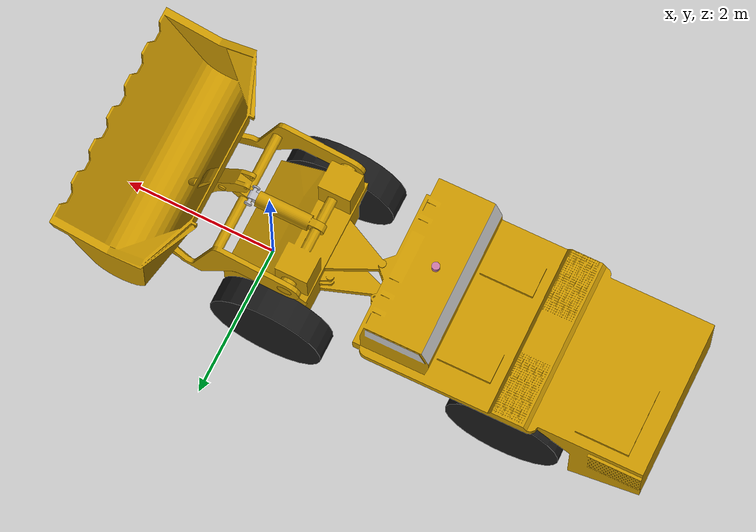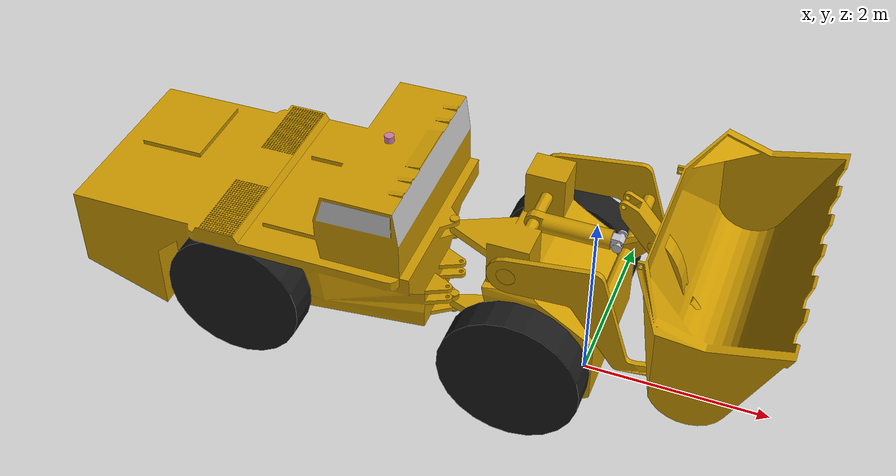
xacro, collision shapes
<?xml version="1.0" ?>
<robot xmlns:xacro="http://www.ros.org/wiki/xacro"
  name="vehicle_urdf_model">
  <xacro:property name="hydraulic_tube_depth" value="0.5249" />
  <xacro:property name="hydraulic_cylinder_start_offset" value="0.05843" />

  <!-- Lift-arm rear mount reference:
       CAD mesh shaft center = (-0.28, 1.41, 0.0)
       URDF joint origin     = (-0.28, 0.0, 1.41). -->
  <link
    name="frontbase_link">
    <inertial>
      <origin
        xyz="-0.15633 2.387E-07 1.0079"
        rpy="0 0 0" />
      <mass
        value="5327.1" />
      <inertia
        ixx="1543.9"
        ixy="0.0014228"
        ixz="222.2"
        iyy="2510.6"
        iyz="-0.0019455"
        izz="2276.8" />
    </inertial>
    <visual>
      <origin
        xyz="0 0 0"
        rpy="0 0 0" />
      <geometry>
        <mesh
          filename="package://articulated_description/meshes/frontbase_Link_with_cylinder.dae" />
      </geometry>
      <material
        name="yellow_body">
        <color
          rgba="0.8 0.6 0.0 1" />
      </material>
    </visual>
    <collision>
      <origin
        xyz="0 0 0"
        rpy="0 0 0" />
      <geometry>
        <mesh
          filename="package://articulated_description/meshes/frontbase_Link_with_cylinder.dae" />
      </geometry>
    </collision>
  </link>
  <link
    name="leftfrontwheel_Link">
    <inertial>
      <origin
        xyz="-1.1102E-16 -0.17395 -1.1102E-16"
        rpy="0 0 0" />
      <mass
        value="492.2" />
      <inertia
        ixx="84.12"
        ixy="1.0524E-16"
        ixz="-1.4211E-14"
        iyy="158.30"
        iyz="-4.5117E-17"
        izz="84.12" />
    </inertial>
    <visual>
      <origin
        xyz="0 0 0"
        rpy="0 0 0" />
      <geometry>
        <mesh
          filename="package://articulated_description/meshes/leftfrontwheel_Link.dae" />
      </geometry>
      <material
        name="black_wheel">
        <color
          rgba="0.1 0.1 0.1 1" />
      </material>
    </visual>
    <collision>
      <origin xyz="0 -0.175 0" rpy="1.5708 0 0" />
      <geometry>
        <cylinder radius="0.75" length="0.35" />
      </geometry>
    </collision>
  </link>
  <joint
    name="leftfrontwheel_to_frontbase"
    type="continuous">
    <origin
      xyz="-0.5 0.821 0.75"
      rpy="3.1416 0.91009 -7.8779E-17" />
    <parent
      link="frontbase_link" />
    <child
      link="leftfrontwheel_Link" />
    <axis
      xyz="0 -1 0" />
    <limit
      effort="10000"
      velocity="10.0" />
    <dynamics damping="1.0" friction="0.2" />
  </joint>
  <link
    name="rightfrontwheel_Link">
    <inertial>
      <origin
        xyz="1.1102E-16 -0.17395 -1.1102E-16"
        rpy="0 0 0" />
      <mass
        value="492.2" />
      <inertia
        ixx="84.12"
        ixy="8.8544E-17"
        ixz="-3.0304E-49"
        iyy="158.30"
        iyz="-1.3628E-17"
        izz="84.12" />
    </inertial>
    <visual>
      <origin
        xyz="0 0 0"
        rpy="0 0 0" />
      <geometry>
        <mesh
          filename="package://articulated_description/meshes/rightfrontwheel_Link.dae" />
      </geometry>
      <material
        name="black_wheel">
        <color
          rgba="0.1 0.1 0.1 1" />
      </material>
    </visual>
    <collision>
      <origin xyz="0 -0.175 0" rpy="1.5708 0 0" />
      <geometry>
        <cylinder radius="0.75" length="0.35" />
      </geometry>
    </collision>
  </link>
  <joint
    name="rightfrontwheel_to_frontbase"
    type="continuous">
    <origin
      xyz="-0.5 -0.821 0.75"
      rpy="-3.1416 -0.72502 3.1416" />
    <parent
      link="frontbase_link" />
    <child
      link="rightfrontwheel_Link" />
    <axis
      xyz="0 1 0" />
    <limit
      effort="10000"
      velocity="10.0" />
    <dynamics damping="1.0" friction="0.2" />
  </joint>
  <link
    name="bucket_arm_Link">
    <inertial>
      <origin
        xyz="0.7 0 0"
        rpy="0 0 0" />
      <mass
        value="10.0" />
      <inertia
        ixx="1.5"
        ixy="0.0"
        ixz="0.0"
        iyy="7.5"
        iyz="0.0"
        izz="7.5" />
    </inertial>
    <visual>
      <origin
        xyz="0 0 0"
        rpy="0 0 0" />
      <geometry>
        <mesh
          filename="package://articulated_description/meshes/bucket_arm_nocylinder_wide.dae" />
      </geometry>
      <material
        name="yellow_body">
        <color
          rgba="0.8 0.6 0.0 1" />
      </material>
    </visual>
    <collision>
      <origin
        xyz="0 0 0"
        rpy="0 0 0" />
      <geometry>
        <mesh
          filename="package://articulated_description/meshes/bucket_arm_nocylinder_wide.dae" />
      </geometry>
    </collision>
  </link>
  <joint
    name="bucket_arm_axis"
    type="revolute">
    <origin
      xyz="-0.64 0 1.87"
      rpy="0 0 0" />
    <parent
      link="frontbase_link" />
    <child
      link="bucket_arm_Link" />
    <axis
      xyz="0 -1 0" />
    <limit
      lower="-0.25"
      upper="1.0"
      effort="200000"
      velocity="0.5" />
    <dynamics damping="40.0" friction="3.0" />
  </joint>
  <joint
    name="arm_to_rocker"
    type="fixed">
    <origin
      xyz="0.95719 0 -0.082758"
      rpy="0 -0.7 0" />
    <parent
      link="bucket_arm_Link" />
    <child
      link="rocker_holder_link" />
  </joint>
  <link
    name="rocker_holder_link">
    <inertial>
      <origin
        xyz="-0.25 0 -0.01"
        rpy="0 0 0" />
      <mass
        value="10.0" />
      <inertia
        ixx="0.0333333333"
        ixy="0.0"
        ixz="0.0"
        iyy="0.1333333333"
        iyz="0.0"
        izz="0.1333333333" />
    </inertial>
    <visual>
      <origin
        xyz="0 0 0"
        rpy="0 0 0" />
      <geometry>
        <mesh
          filename="package://articulated_description/meshes/rocker_holder.dae" />
      </geometry>
      <material
        name="yellow_body">
        <color
          rgba="0.8 0.6 0.0 1" />
      </material>
    </visual>
    <collision>
      <origin
        xyz="0 0 0"
        rpy="0 0 0" />
      <geometry>
        <mesh
          filename="package://articulated_description/meshes/rocker_holder.dae" />
      </geometry>
    </collision>
  </link>
  <link
    name="rocker_link">
    <inertial>
      <origin
        xyz="0 0 0"
        rpy="0 0 0" />
      <mass
        value="10.0" />
      <inertia
        ixx="0.05"
        ixy="0.0"
        ixz="0.0"
        iyy="0.1"
        iyz="0.0"
        izz="0.1" />
    </inertial>
    <visual>
      <origin
        xyz="0 0 0"
        rpy="0 0 0" />
      <geometry>
        <mesh
          filename="package://articulated_description/meshes/rocker_link.dae" />
      </geometry>
      <material
        name="yellow_body">
        <color
          rgba="0.8 0.6 0.0 1" />
      </material>
    </visual>
    <collision>
      <origin
        xyz="0 0 0"
        rpy="0 0 0" />
      <geometry>
        <mesh
          filename="package://articulated_description/meshes/rocker_link.dae" />
      </geometry>
    </collision>
  </link>
  <joint
    name="rocker_joint"
    type="revolute">
    <origin
      xyz="0.342735349 0 0"
      rpy="0 1.57079632679 0" />
    <parent
      link="rocker_holder_link" />
    <child
      link="rocker_link" />
    <axis
      xyz="0 1 0" />
    <limit
      lower="-1.57"
      upper="1.57"
      effort="50000"
      velocity="1.0" />
    <dynamics damping="0.5" friction="0.0" />
  </joint>
  <link
    name="connector_to_bucket_link">
    <inertial>
      <origin
        xyz="0.24 0 0"
        rpy="0 0 0" />
      <mass
        value="10.0" />
      <inertia
        ixx="0.0375"
        ixy="0.0"
        ixz="0.0"
        iyy="0.1"
        iyz="0.0"
        izz="0.1" />
    </inertial>
    <visual>
      <origin
        xyz="0 0 0"
        rpy="0 0 0" />
      <geometry>
        <mesh
          filename="package://articulated_description/meshes/connector_to_bucket.dae" />
      </geometry>
      <material
        name="yellow_body">
        <color
          rgba="0.8 0.6 0.0 1" />
      </material>
    </visual>
    <collision>
      <origin
        xyz="0 0 0"
        rpy="0 0 0" />
      <geometry>
        <mesh
          filename="package://articulated_description/meshes/connector_to_bucket.dae" />
      </geometry>
    </collision>
  </link>
  <joint
    name="rocker_to_bucket"
    type="revolute">
    <origin
      xyz="0.70625 0 -0.15"
      rpy="0 0 0" />
    <parent
      link="rocker_link" />
    <child
      link="connector_to_bucket_link" />
    <axis
      xyz="0 1 0" />
    <limit
      lower="-2.35619"
      upper="1.0"
      effort="50000"
      velocity="1.1" />
    <dynamics damping="0.5" friction="0.0" />
  </joint>
  <link
    name="outer_tube_link">
    <inertial>
      <origin
        xyz="0.26 0 0"
        rpy="0 0 0" />
      <mass
        value="10.0" />
      <inertia
        ixx="0.032"
        ixy="0.0"
        ixz="0.0"
        iyy="0.32"
        iyz="0.0"
        izz="0.32" />
    </inertial>
    <visual>
      <origin
        xyz="0 0 0"
        rpy="0 0 0" />
      <geometry>
        <mesh
          filename="package://articulated_description/meshes/outer_tube_with_eye.dae" />
      </geometry>
      <material
        name="yellow_body">
        <color
          rgba="0.8 0.6 0.0 1" />
      </material>
    </visual>
    <collision>
      <origin
        xyz="0 0 0"
        rpy="0 0 0" />
      <geometry>
        <mesh
          filename="package://articulated_description/meshes/outer_tube_with_eye.dae" />
      </geometry>
    </collision>
  </link>
  <joint
    name="front_link_to_cylinder"
    type="revolute">
    <origin
      xyz="-0.642805 0 1.867242"
      rpy="0 0 0" />
    <parent
      link="frontbase_link" />
    <child
      link="outer_tube_link" />
    <axis
      xyz="0 1 0" />
    <limit
      lower="-3.1416"
      upper="3.1416"
      effort="50000"
      velocity="1.0" />
    <dynamics damping="0.5" friction="0.0" />
  </joint>
  <link
    name="inner_cylinder_link">
    <inertial>
      <origin
        xyz="0.30 0 0"
        rpy="0 0 0" />
      <mass
        value="10.0" />
      <inertia
        ixx="0.0333333333"
        ixy="0.0"
        ixz="0.0"
        iyy="0.3333333333"
        iyz="0.0"
        izz="0.3333333333" />
    </inertial>
    <visual>
      <origin
        xyz="0 0 0"
        rpy="0 0 0" />
      <geometry>
        <mesh
          filename="package://articulated_description/meshes/cylinder_with_boss.dae" />
      </geometry>
      <material
        name="hydraulic_steel">
        <color
          rgba="0.75 0.75 0.78 1" />
      </material>
    </visual>
    <collision>
      <origin
        xyz="0 0 0"
        rpy="0 0 0" />
      <geometry>
        <mesh
          filename="package://articulated_description/meshes/cylinder_with_boss.dae" />
      </geometry>
    </collision>
  </link>
  <joint
    name="tube_to_inner_cylinder"
    type="prismatic">
    <origin
      xyz="${0.102188 + hydraulic_cylinder_start_offset} 0 0"
      rpy="0 0 0" />
    <parent
      link="outer_tube_link" />
    <child
      link="inner_cylinder_link" />
    <axis
      xyz="1 0 0" />
    <limit
      lower="-0.3"
      upper="1.0"
      effort="50000"
      velocity="0.25" />
    <dynamics damping="80.0" friction="5.0" />
  </joint>
  <link
    name="bucket_Link">
    <inertial>
      <origin
        xyz="-0.03198 0.000116 0.681543"
        rpy="0 0 0" />
      <mass
        value="5571.5" />
      <inertia
        ixx="2447.950394"
        ixy="-0.529463106"
        ixz="12.851593333"
        iyy="1867.890464"
        iyz="-0.330614662"
        izz="2763.814961" />
    </inertial>
    <visual>
      <origin
        xyz="-0.77221 0 1.155943"
        rpy="-1.5708 0 0" />
      <geometry>
        <mesh
          filename="package://articulated_description/meshes/bucket_Link_alt.dae" />
      </geometry>
      <material
        name="yellow_body">
        <color
          rgba="0.8 0.6 0.0 1" />
      </material>
    </visual>
    <collision>
      <origin
        xyz="-0.77221 0 1.155943"
        rpy="-1.5708 0 0" />
      <geometry>
        <mesh
          filename="package://articulated_description/meshes/bucket_Link_alt.dae" />
      </geometry>
    </collision>
  </link>
  <joint
    name="bucket_pitch_joint"
    type="revolute">
    <origin
      xyz="2.03 0 -0.767588"
      rpy="-2.6404883777743E-17 -0.0689393308210947 1.7078045080171E-17" />
    <parent
      link="bucket_arm_Link" />
    <child
      link="bucket_Link" />
    <axis
      xyz="0 -1 0" />
    <limit
      lower="-3.14"
      upper="0.0"
      effort="500000"
      velocity="0.7" />
    <dynamics damping="120.0" friction="5.0" />
  </joint>
  <link
    name="behindbase_Link">
    <inertial>
      <origin
        xyz="-1.9425 -0.023265 -0.39896"
        rpy="0 0 0" />
      <mass
        value="9132.4" />
      <inertia
        ixx="3573.8"
        ixy="-296.36"
        ixz="-1566.6"
        iyy="15157.0"
        iyz="2.589"
        izz="14368.0" />
    </inertial>
    <visual>
      <origin
        xyz="0 0 0"
        rpy="0 0 0" />
      <geometry>
        <mesh
          filename="package://articulated_description/meshes/behindbase_Link.dae" />
      </geometry>
    </visual>
    <collision>
      <origin
        xyz="0 0 0"
        rpy="0 0 0" />
      <geometry>
        <mesh
          filename="package://articulated_description/meshes/behindbase_Link.dae" />
      </geometry>
    </collision>
  </link>
  <joint
    name="behindbase_to_frontbase"
    type="revolute">
    <origin
      xyz="-1.5 0 1.585"
      rpy="1.2202E-16 -2.4629E-16 0.014505" />
    <parent
      link="frontbase_link" />
    <child
      link="behindbase_Link" />
    <axis
      xyz="0 0 -1" />
    <limit
      lower="-0.61"
      upper="0.61"
      effort="200000"
      velocity="0.1525" />
    <dynamics damping="40.0" friction="3.0" />
  </joint>
  <link
    name="leftbehindwheel_Link">
    <inertial>
      <origin
        xyz="0 -0.17395 2.2204E-16"
        rpy="0 0 0" />
      <mass
        value="492.2" />
      <inertia
        ixx="84.12"
        ixy="1.2212E-15"
        ixz="3.399E-16"
        iyy="158.30"
        iyz="6.3838E-16"
        izz="84.12" />
    </inertial>
    <visual>
      <origin
        xyz="0 0 0"
        rpy="0 0 0" />
      <geometry>
        <mesh
          filename="package://articulated_description/meshes/leftbehindwheel_Link.dae" />
      </geometry>
      <material
        name="black_wheel">
        <color
          rgba="0.1 0.1 0.1 1" />
      </material>
    </visual>
    <collision>
      <origin xyz="0 -0.175 0" rpy="1.5708 0 0" />
      <geometry>
        <cylinder radius="0.75" length="0.35" />
      </geometry>
    </collision>
  </link>
  <joint
    name="leftbehindwheel_to_behindbase"
    type="continuous">
    <origin
      xyz="-2.1 0.725 -0.835"
      rpy="1.7384E-17 0.12873 -3.1416" />
    <parent
      link="behindbase_Link" />
    <child
      link="leftbehindwheel_Link" />
    <axis
      xyz="0 -1 0" />
    <limit
      effort="10000"
      velocity="10.0" />
    <dynamics damping="1.0" friction="0.2" />
  </joint>
  <link
    name="rightbehindwheel_Link">
    <inertial>
      <origin
        xyz="0 -0.17395 -2.2204E-16"
        rpy="0 0 0" />
      <mass
        value="492.2" />
      <inertia
        ixx="84.12"
        ixy="6.1062E-16"
        ixz="-1.3869E-15"
        iyy="158.30"
        iyz="-4.4409E-16"
        izz="84.12" />
    </inertial>
    <visual>
      <origin
        xyz="0 0 0"
        rpy="0 0 0" />
      <geometry>
        <mesh
          filename="package://articulated_description/meshes/rightbehindwheel_Link.dae" />
      </geometry>
      <material
        name="black_wheel">
        <color
          rgba="0.1 0.1 0.1 1" />
      </material>
    </visual>
    <collision>
      <origin xyz="0 -0.175 0" rpy="1.5708 0 0" />
      <geometry>
        <cylinder radius="0.75" length="0.35" />
      </geometry>
    </collision>
  </link>
  <joint
    name="rightbehindwheel_to_behindbase"
    type="continuous">
    <origin
      xyz="-2.1 -0.725 -0.835"
      rpy="-3.1416 -0.9242 3.1416" />
    <parent
      link="behindbase_Link" />
    <child
      link="rightbehindwheel_Link" />
    <axis
      xyz="0 1 0" />
    <limit
      effort="10000"
      velocity="10.0" />
    <dynamics damping="1.0" friction="0.2" />
  </joint>

  <!-- Localization base frame: rear axle center -->
  <link name="base_link"/>

  <joint name="behindbase_to_base_link" type="fixed">
    <origin xyz="-2.1 0 -0.835" rpy="0 0 0"/>
    <parent link="behindbase_Link"/>
    <child link="base_link"/>
  </joint>

<!-- ros2_control -->
  <ros2_control name="ArticulatedVehicle" type="system">
    <hardware>
      <plugin>ign_ros2_control/IgnitionSystem</plugin>
    </hardware>
    <joint name="leftfrontwheel_to_frontbase">
      <command_interface name="velocity"/>
      <state_interface name="position"/>
      <state_interface name="velocity"/>
    </joint>
    <joint name="rightfrontwheel_to_frontbase">
      <command_interface name="velocity"/>
      <state_interface name="position"/>
      <state_interface name="velocity"/>
    </joint>
    <joint name="leftbehindwheel_to_behindbase">
      <command_interface name="velocity"/>
      <state_interface name="position"/>
      <state_interface name="velocity"/>
    </joint>
    <joint name="rightbehindwheel_to_behindbase">
      <command_interface name="velocity"/>
      <state_interface name="position"/>
      <state_interface name="velocity"/>
    </joint>
    <joint name="behindbase_to_frontbase">
      <command_interface name="velocity"/>
      <state_interface name="position"/>
      <state_interface name="velocity"/>
    </joint>
    <joint name="bucket_arm_axis">
      <command_interface name="position">
        <param name="initial_value">0.5</param>
      </command_interface>
      <state_interface name="position">
        <param name="initial_value">0.5</param>
      </state_interface>
      <state_interface name="velocity"/>
    </joint>
    <joint name="rocker_joint">
      <command_interface name="position">
        <param name="initial_value">0.32</param>
      </command_interface>
      <state_interface name="position">
        <param name="initial_value">0.32</param>
      </state_interface>
      <state_interface name="velocity"/>
    </joint>
    <joint name="rocker_to_bucket">
      <command_interface name="position">
        <param name="initial_value">-1.45</param>
      </command_interface>
      <state_interface name="position">
        <param name="initial_value">-1.45</param>
      </state_interface>
      <state_interface name="velocity"/>
    </joint>
    <joint name="front_link_to_cylinder">
      <command_interface name="position"/>
      <state_interface name="position"/>
      <state_interface name="velocity"/>
    </joint>
    <joint name="tube_to_inner_cylinder">
      <command_interface name="position">
        <param name="initial_value">0.35</param>
      </command_interface>
      <state_interface name="position">
        <param name="initial_value">0.35</param>
      </state_interface>
      <state_interface name="velocity"/>
    </joint>
    <joint name="bucket_pitch_joint">
      <command_interface name="position">
        <param name="initial_value">-0.70</param>
      </command_interface>
      <state_interface name="position">
        <param name="initial_value">-0.70</param>
      </state_interface>
      <state_interface name="velocity"/>
    </joint>
  </ros2_control>

  <!-- ign_ros2_control plugin -->
  <gazebo>
    <plugin filename="libign_ros2_control-system.so"
            name="ign_ros2_control::IgnitionROS2ControlPlugin">
      <parameters>$(find articulated_description)/config/controllers.yaml</parameters>
    </plugin>
  </gazebo>

  <!-- 轮子摩擦 -->
  <gazebo reference="leftfrontwheel_Link">
    <mu1>0.85</mu1><mu2>0.85</mu2><kp>2e5</kp><kd>40.0</kd>
  </gazebo>
  <gazebo reference="rightfrontwheel_Link">
    <mu1>0.85</mu1><mu2>0.85</mu2><kp>2e5</kp><kd>40.0</kd>
  </gazebo>
  <gazebo reference="leftbehindwheel_Link">
    <mu1>0.85</mu1><mu2>0.85</mu2><kp>2e5</kp><kd>40.0</kd>
  </gazebo>
  <gazebo reference="rightbehindwheel_Link">
    <mu1>0.85</mu1><mu2>0.85</mu2><kp>2e5</kp><kd>40.0</kd>
  </gazebo>

  <!-- VLP-16 LiDAR，安装在后车轴中心(base_link)上方 -->
  <xacro:include filename="$(find velodyne_description)/urdf/VLP-16.urdf.xacro"/>

  <xacro:VLP-16 parent="base_link" name="velodyne" topic="/velodyne_points" hz="10" gpu="true">
    <origin xyz="1.400 0 1.685" rpy="0 0 0"/>
  </xacro:VLP-16>

  <!-- IMU，安装在后车体 -->
  <link name="imu_link">
    <inertial>
      <mass value="0.05"/>
      <origin xyz="0 0 0"/>
      <inertia ixx="0.0001" ixy="0" ixz="0"
               iyy="0.0001" iyz="0" izz="0.0001"/>
    </inertial>
  </link>

  <joint name="imu_joint" type="fixed">
    <origin xyz="1.400 0 1.685" rpy="0 0 0"/>
    <parent link="base_link"/>
    <child link="imu_link"/>
  </joint>

  <gazebo reference="imu_link">
    <sensor name="imu_sensor" type="imu">
      <always_on>true</always_on>
      <update_rate>100</update_rate>
      <visualize>false</visualize>
      <topic>imu/data_raw</topic>
      <gz_frame_id>imu_link</gz_frame_id>
      <imu>
        <angular_velocity>
          <x><noise type="gaussian"><mean>0</mean><stddev>0.0</stddev></noise></x>
          <y><noise type="gaussian"><mean>0</mean><stddev>0.0</stddev></noise></y>
          <z><noise type="gaussian"><mean>0</mean><stddev>0.0</stddev></noise></z>
        </angular_velocity>
        <linear_acceleration>
          <x><noise type="gaussian"><mean>0</mean><stddev>0.0</stddev></noise></x>
          <y><noise type="gaussian"><mean>0</mean><stddev>0.0</stddev></noise></y>
          <z><noise type="gaussian"><mean>0</mean><stddev>0.0</stddev></noise></z>
        </linear_acceleration>
      </imu>
    </sensor>
  </gazebo>
</robot>

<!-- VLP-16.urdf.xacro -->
<robot xmlns:xacro="http://www.ros.org/wiki/xacro" name="VLP-16">
  <xacro:property name="M_PI" value="3.1415926535897931" />
  <xacro:macro name="VLP-16" params="*origin parent:=base_link name:=velodyne topic:=/velodyne_points gz_topic:=lidar hz:=10 lasers:=16 samples:=1875 collision_range:=0.3 min_range:=0.9 max_range:=130.0 noise:=0.008 min_angle:=-${M_PI} max_angle:=${M_PI} gpu:=true">

    <joint name="${name}_base_mount_joint" type="fixed">
      <xacro:insert_block name="origin" />
      <parent link="${parent}"/>
      <child link="${name}_base_link"/>
    </joint>

    <link name="${name}_base_link">
      <inertial>
        <mass value="0.83"/>
        <origin xyz="0 0 0.03585"/>
        <inertia ixx="${(0.83 * (3.0*0.0516*0.0516 + 0.0717*0.0717)) / 12.0}" ixy="0" ixz="0"
          iyy="${(0.83 * (3.0*0.0516*0.0516 + 0.0717*0.0717)) / 12.0}" iyz="0"
          izz="${0.5 * 0.83 * (0.0516*0.0516)}"/>
      </inertial>
      <visual>
        <geometry>
          <mesh filename="package://velodyne_description/meshes/VLP16_base_1.dae" />
        </geometry>
      </visual>
      <visual>
        <geometry>
          <mesh filename="package://velodyne_description/meshes/VLP16_base_2.dae" />
        </geometry>
      </visual>
      <collision>
        <origin rpy="0 0 0" xyz="0 0 0.03585"/>
        <geometry>
          <cylinder radius="0.0516" length="0.0717"/>
        </geometry>
      </collision>
    </link>

    <joint name="${name}_base_scan_joint" type="fixed" >
      <origin xyz="0 0 0.0377" rpy="0 0 0" />
      <parent link="${name}_base_link" />
      <child link="${name}"/>
    </joint>

    <link name="${name}">
      <inertial>
        <mass value="0.01"/>
        <origin xyz="0 0 0"/>
        <inertia ixx="1e-7" ixy="0" ixz="0" iyy="1e-7" iyz="0" izz="1e-7"/>
      </inertial>
      <visual>
        <origin xyz="0 0 -0.0377" />
        <geometry>
          <mesh filename="package://velodyne_description/meshes/VLP16_scan.dae" />
        </geometry>
      </visual>
    </link>

    <!-- Gazebo Fortress GPU Lidar sensor -->
    <gazebo reference="${name}">
      <sensor type="gpu_lidar" name="${name}-VLP16">
        <pose>0 0 0 0 0 0</pose>
        <visualize>false</visualize>
        <update_rate>${hz}</update_rate>
        <always_on>true</always_on>
        <topic>${gz_topic}</topic>
        <gz_frame_id>${name}</gz_frame_id>
        <lidar>
          <scan>
            <horizontal>
              <samples>${samples}</samples>
              <resolution>1</resolution>
              <min_angle>${min_angle}</min_angle>
              <max_angle>${max_angle}</max_angle>
            </horizontal>
            <vertical>
              <samples>${lasers}</samples>
              <resolution>1</resolution>
              <min_angle>-${15.0*M_PI/180.0}</min_angle>
              <max_angle>${15.0*M_PI/180.0}</max_angle>
            </vertical>
          </scan>
          <range>
            <min>${min_range}</min>
            <max>${max_range}</max>
            <resolution>0.01</resolution>
          </range>
          <noise>
            <type>gaussian</type>
            <mean>0.0</mean>
            <stddev>${noise}</stddev>
          </noise>
        </lidar>
        <plugin filename="libVelodyneLidarSystem.so" name="velodyne_gazebo_plugins::VelodyneLidarSystem">
          <ros_topic>${topic}</ros_topic>
          <gz_topic>${gz_topic}/points</gz_topic>
          <frame_id>${name}</frame_id>
          <min_range>${min_range}</min_range>
          <max_range>${max_range}</max_range>
          <gaussian_noise>0.0</gaussian_noise>
          <scan_period>${1.0 / hz}</scan_period>
        </plugin>
      </sensor>
    </gazebo>

  </xacro:macro>
</robot>
